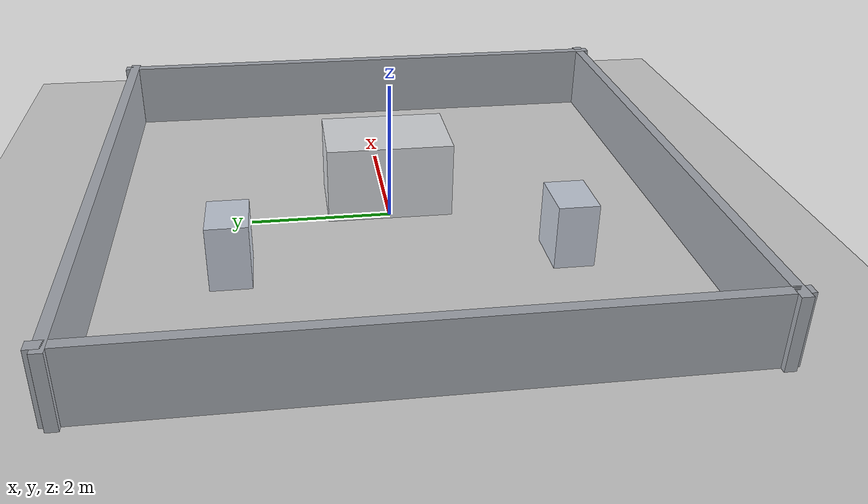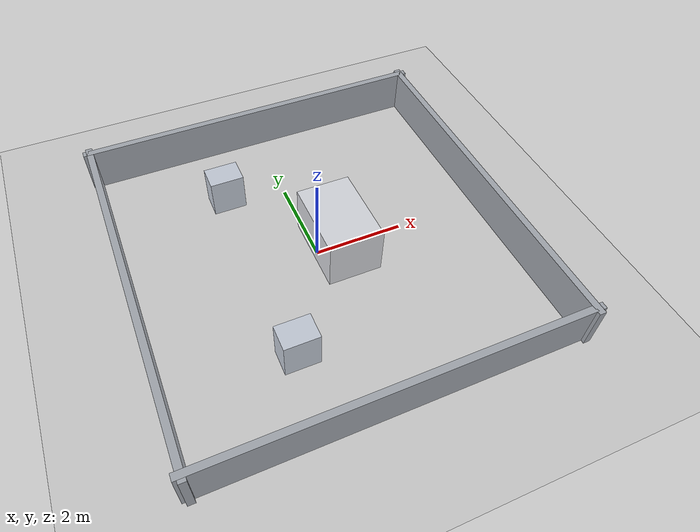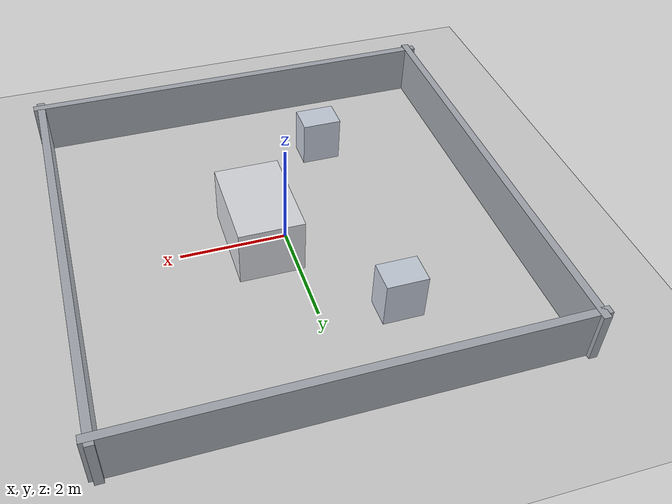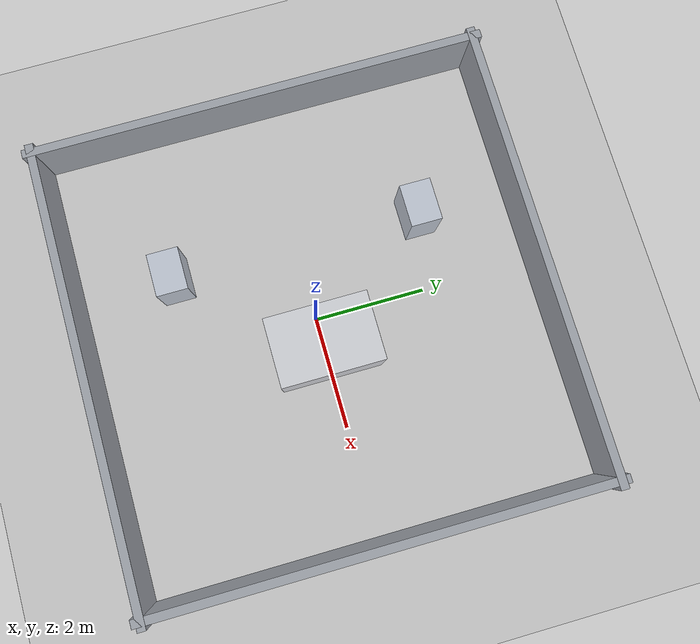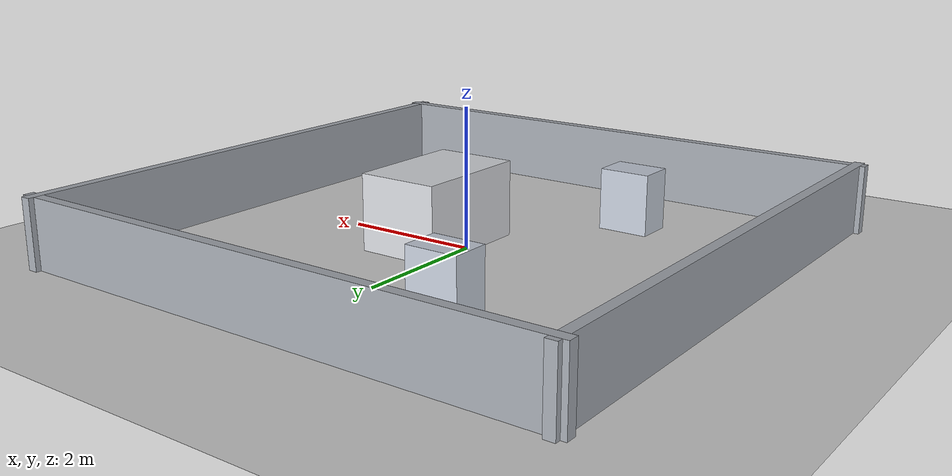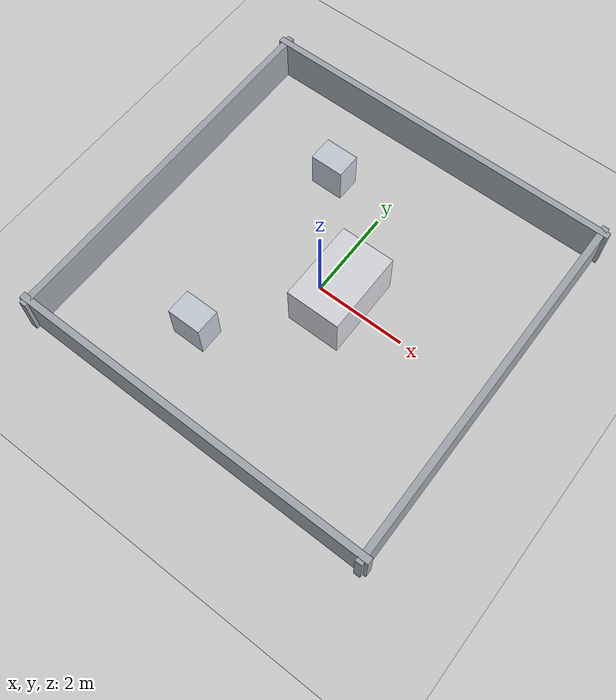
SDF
<sdf version="1.6">
 <world name="social_train_hybrid_8ped">
  <scene>
   <ambient>0.46 0.46 0.48 1</ambient>
   <background>0.93 0.96 1.0 1</background>
   <shadows>true</shadows>
  </scene>
  <include><uri>model://sun</uri></include>
  <include><uri>model://ground_plane</uri></include>
  <physics type="ode">
   <real_time_update_rate>0</real_time_update_rate>
   <max_step_size>0.001</max_step_size>
   <real_time_factor>1</real_time_factor>
   <ode>
    <solver>
     <type>quick</type>
     <iters>150</iters>
     <precon_iters>0</precon_iters>
     <sor>1.4</sor>
     <use_dynamic_moi_rescaling>1</use_dynamic_moi_rescaling>
    </solver>
    <constraints>
     <cfm>0.00001</cfm>
     <erp>0.2</erp>
     <contact_max_correcting_vel>2000.0</contact_max_correcting_vel>
     <contact_surface_layer>0.01</contact_surface_layer>
    </constraints>
   </ode>
  </physics>
  <model name="north_wall">
   <static>true</static>
   <pose>0 4.0 0.5 0 0 0</pose>
   <link name="link">
    <collision name="collision"><geometry><box><size>8.3 0.15 1.0</size></box></geometry></collision>
    <visual name="visual">
     <geometry><box><size>8.3 0.15 1.0</size></box></geometry>
     <material><ambient>0.56 0.57 0.60 1</ambient><diffuse>0.64 0.66 0.69 1</diffuse></material>
    </visual>
   </link>
  </model>
  <model name="south_wall">
   <static>true</static>
   <pose>0 -4.0 0.5 0 0 0</pose>
   <link name="link">
    <collision name="collision"><geometry><box><size>8.3 0.15 1.0</size></box></geometry></collision>
    <visual name="visual">
     <geometry><box><size>8.3 0.15 1.0</size></box></geometry>
     <material><ambient>0.56 0.57 0.60 1</ambient><diffuse>0.64 0.66 0.69 1</diffuse></material>
    </visual>
   </link>
  </model>
  <model name="west_wall">
   <static>true</static>
   <pose>-4.0 0 0.5 0 0 0</pose>
   <link name="link">
    <collision name="collision"><geometry><box><size>0.15 8.3 1.0</size></box></geometry></collision>
    <visual name="visual">
     <geometry><box><size>0.15 8.3 1.0</size></box></geometry>
     <material><ambient>0.56 0.57 0.60 1</ambient><diffuse>0.64 0.66 0.69 1</diffuse></material>
    </visual>
   </link>
  </model>
  <model name="east_wall">
   <static>true</static>
   <pose>4.0 0 0.5 0 0 0</pose>
   <link name="link">
    <collision name="collision"><geometry><box><size>0.15 8.3 1.0</size></box></geometry></collision>
    <visual name="visual">
     <geometry><box><size>0.15 8.3 1.0</size></box></geometry>
     <material><ambient>0.56 0.57 0.60 1</ambient><diffuse>0.64 0.66 0.69 1</diffuse></material>
    </visual>
   </link>
  </model>
  <model name="center_block">
   <static>true</static>
   <pose>0.50 0.00 0.55 0 0 0</pose>
   <link name="link">
    <collision name="collision"><geometry><box><size>1.20 1.80 1.10</size></box></geometry></collision>
    <visual name="visual">
     <geometry><box><size>1.20 1.80 1.10</size></box></geometry>
     <material><ambient>0.78 0.79 0.81 1</ambient><diffuse>0.84 0.85 0.87 1</diffuse></material>
    </visual>
   </link>
  </model>
  <model name="upper_gate_block">
   <static>true</static>
   <pose>-1.35 2.25 0.45 0 0 0</pose>
   <link name="link">
    <collision name="collision"><geometry><box><size>0.75 0.55 0.90</size></box></geometry></collision>
    <visual name="visual">
     <geometry><box><size>0.75 0.55 0.90</size></box></geometry>
     <material><ambient>0.72 0.74 0.79 1</ambient><diffuse>0.77 0.80 0.85 1</diffuse></material>
    </visual>
   </link>
  </model>
  <model name="lower_gate_block">
   <static>true</static>
   <pose>-1.35 -2.25 0.45 0 0 0</pose>
   <link name="link">
    <collision name="collision"><geometry><box><size>0.75 0.55 0.90</size></box></geometry></collision>
    <visual name="visual">
     <geometry><box><size>0.75 0.55 0.90</size></box></geometry>
     <material><ambient>0.72 0.74 0.79 1</ambient><diffuse>0.77 0.80 0.85 1</diffuse></material>
    </visual>
   </link>
  </model>
 </world>
</sdf>
